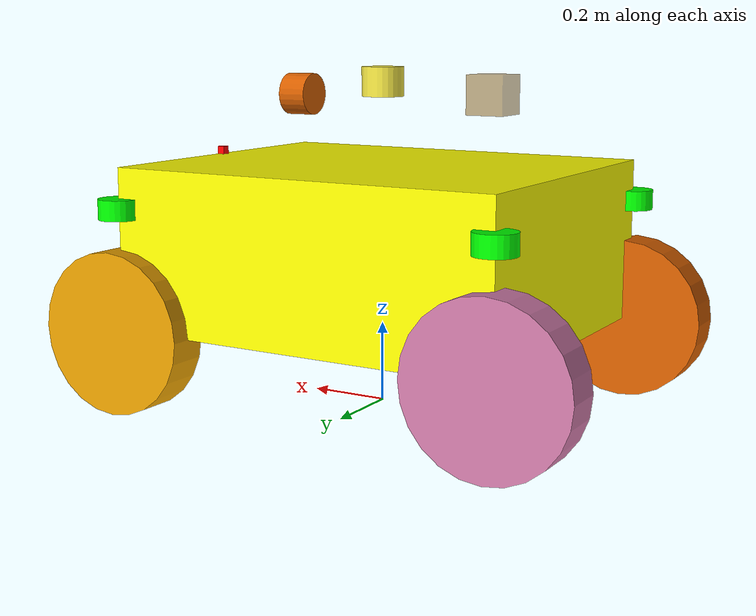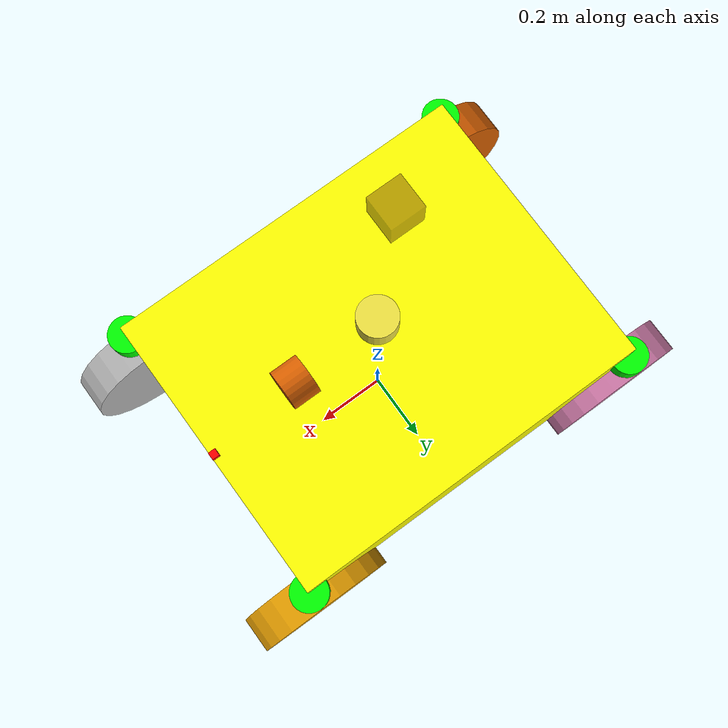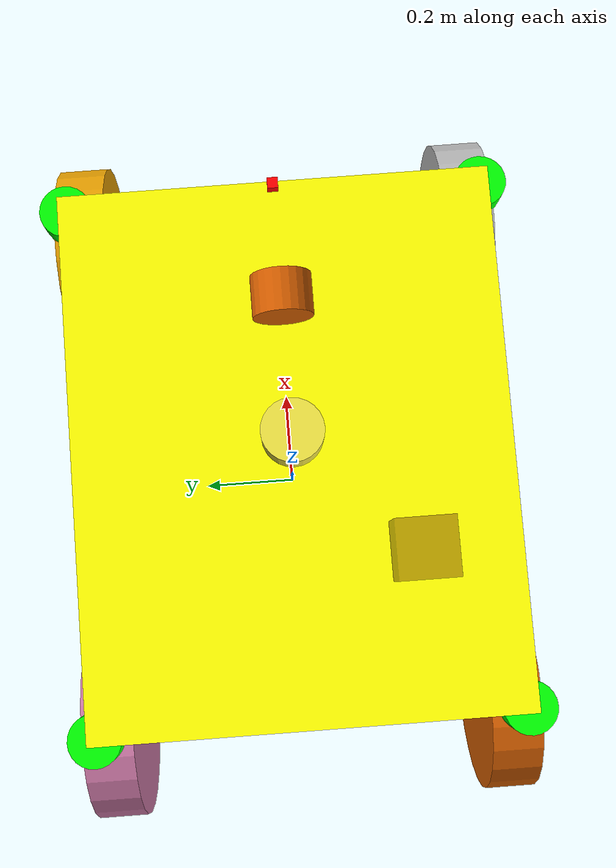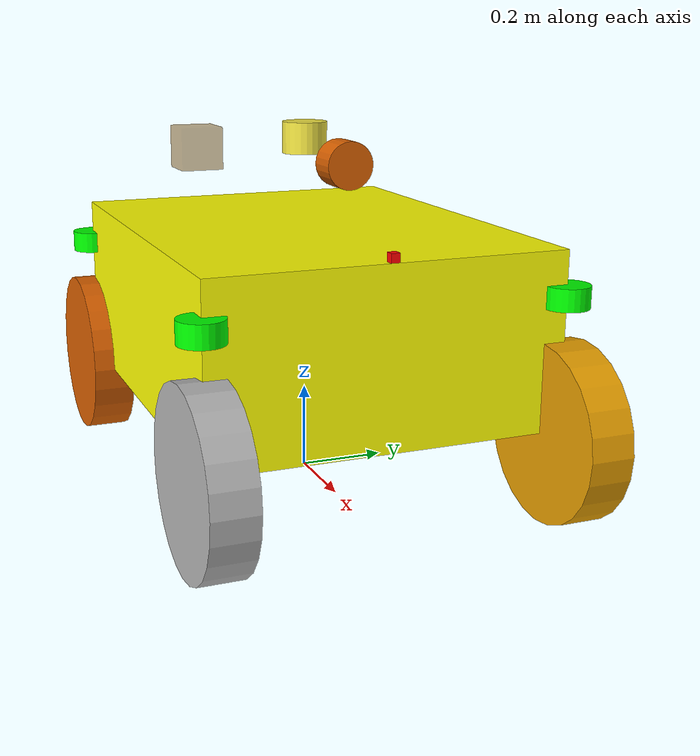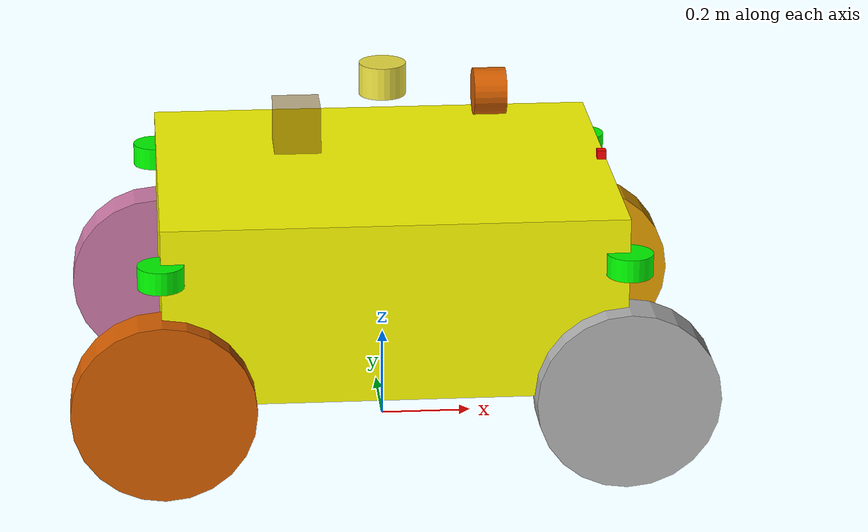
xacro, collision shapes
<?xml version="1.0" ?>
<robot name="airport_robot"
    xmlns:xacro="http://www.ros.org/wiki/xacro">
    <!-- *************************用于构建机场地图的双激光雷达机器人模型*************************** -->
    <xacro:property name="robot_id" value="0"/>
    <xacro:property name="robot_name" value="$(arg robot_name)"/>
    <xacro:property name="PI" value="3.1415926835897931"/>
    <xacro:property name="material_density" value="10.0"/>

    <!-- base -->
    <xacro:property name="base_length" value="1"/>
    <xacro:property name="base_width" value="0.8"/>
    <xacro:property name="base_height" value="0.4"/>
    <xacro:property name="base_collision_height" value="0.4"/>
    <xacro:property name="base_mass" value="${material_density*base_length*base_width*base_height}"/>
    <xacro:property name="base_mass_ixx" value="${(base_width*base_width+base_height*base_height)*base_mass/12.0}"/>
    <xacro:property name="base_mass_iyy" value="${(base_length*base_length+base_height*base_height)*base_mass/12.0}"/>
    <xacro:property name="base_mass_izz" value="${(base_width*base_width+base_width*base_width)*base_mass/12.0}"/>
    <!-- rear tyre -->
    <xacro:property name="rear_tyre_x" value="${base_length/2.0}"/>
    <xacro:property name="rear_tyre_y" value="${base_width/2.0}"/>
    <xacro:property name="rear_tyre_r" value="${base_collision_height/2.0}"/>
    <xacro:property name="rear_tyre_length" value="0.1"/>
    <xacro:property name="rear_tyre_mass" value="20"/>
    <xacro:property name="rear_tyre_mass_ixx" value="0.5"/>
    <xacro:property name="rear_tyre_mass_iyy" value="0.9"/>
    <xacro:property name="rear_tyre_mass_izz" value="0.5"/>
    <!-- front tyre -->
    <xacro:property name="front_tyre_x" value="${base_length/2.0}"/>
    <xacro:property name="front_tyre_y" value="${base_width/2.0}"/>
    <xacro:property name="front_tyre_r" value="${base_collision_height/2.0}"/>
    <xacro:property name="front_tyre_length" value="0.1"/>
    <xacro:property name="front_tyre_mass" value="20"/>
    <xacro:property name="front_tyre_mass_ixx" value="0.5"/>
    <xacro:property name="front_tyre_mass_iyy" value="0.9"/>
    <xacro:property name="front_tyre_mass_izz" value="0.5"/>
    <xacro:property name="front_commandtyre_mass_izz" value="0.5"/>
    <!-- steering -->
    <xacro:property name="str_angle" value="0.6"/>
    <xacro:property name="str_length" value="0.01"/>
    <xacro:property name="str_radius" value="0.1"/>
    <xacro:property name="str_mass" value="5"/>
    <xacro:property name="str_mass_ixx" value="0.012"/>
    <xacro:property name="str_mass_iyy" value="0.025"/>
    <xacro:property name="str_mass_izz" value="0.012"/>

    <!-- IMU -->
    <xacro:property name="IMU_x" value="0"/>
    <xacro:property name="IMU_y" value="0"/>
    <xacro:property name="IMU_z" value="1.25"/>

    <!-- LiDAR -->
    <xacro:property name="LiDAR_x" value="0"/>
    <xacro:property name="LiDAR_y" value="0"/>
    <xacro:property name="LiDAR_z" value="1.5"/>

    <!-- velodyne -->
    <xacro:property name="lasers_horizon" value="16"/>
    <xacro:property name="lasers_vertical" value="16"/>
    <xacro:property name="link_support_joint_x" value="0"/>
    <xacro:property name="link_support_joint_y" value="0"/>
    <xacro:property name="link_support_joint_z" value="0.08"/>

    <!-- To fix the problem -->
    <!-- The root link base_link has an inertia specified in the URDF, but KDL does not support a root link with an inertia.  As a workaround, you can add an extra dummy link to your URDF. -->
     <link name="odom">
    </link>
    <joint name="odom" type="fixed">
        <parent link="odom"/>
        <child link="base_footprint"/>
        <origin xyz="0 0 0" rpy="0 0 0"/>
    </joint>

    <link name="base_footprint">
    </link>
    <joint name="base_joint" type="fixed">
        <parent link="base_footprint"/>
        <child link="base_link"/>
        <origin xyz="0 0 0" rpy="0 0 0"/>
    </joint>

    <!--Car Body-->
    <link name="base_link">
        <inertial>
            <origin xyz="0 0 ${base_collision_height}" rpy="0 0 0"/>
            <mass value="${base_mass}"/>
            <inertia ixx="${base_mass_ixx}" ixy="0" ixz="0" iyy="${base_mass_iyy}" iyz="0" izz="${base_mass_izz}" />
        </inertial>
        <visual>
            <origin xyz="0 0 ${base_collision_height}" rpy="0 0 0" />
            <geometry>
                <box size="${base_length} ${base_width} ${base_height}" />
            </geometry>
            <material name="Yellow">
                <color rgba="1.0 1.0 0.0 1.0"/>
            </material>
        </visual>
        <collision>
            <origin xyz="0 0 ${base_collision_height}" rpy="0 0 0"/>
            <geometry>
                <box size="${base_length} ${base_width} ${base_height}"/>
            </geometry>
        </collision>
    </link>

    <!--定位激光雷达-->

    <xacro:arg name="gpu" default="true"/>
    <xacro:property name="gpu" value="$(arg gpu)" />
    <xacro:arg name="organize_cloud" default="false"/>
    <xacro:property name="organize_cloud" value="$(arg organize_cloud)" />
    <xacro:include filename="$(find velodyne_description)/urdf/VLP-16.urdf.xacro"/>
    <xacro:VLP-16 parent="base_link" name="velodyne" topic="points_raw" organize_cloud="${organize_cloud}" hz="10" samples="440" gpu="${gpu}" lasers="${lasers_horizon}">
        <origin xyz="0 0 0.76415" rpy="0 0 0" />
    </xacro:VLP-16>

    <xacro:arg name="gpu" default="true"/>
    <xacro:property name="gpu" value="$(arg gpu)" />
    <xacro:arg name="organize_cloud" default="false"/>
    <xacro:property name="organize_cloud" value="$(arg organize_cloud)" />
    <xacro:include filename="$(find velodyne_description)/urdf/VLP-16.urdf.xacro"/>
    <xacro:VLP-16 parent="base_link" name="velodyne1" topic="points_raw1" organize_cloud="${organize_cloud}" hz="10" samples="440" gpu="${gpu}" lasers="${lasers_vertical}">
        <origin xyz="0.2 0 0.76415" rpy="0 1.57 0" />

    </xacro:VLP-16>

    <!-- IMU sensor -->
    <joint name="imu_joint1" type="fixed">
        <parent link="base_link"/>
        <child link="imu_link1"/>
        <origin xyz="-0.2 -0.2 0.76415" rpy="0 0 0"/>
    </joint>
    <link name="imu_link1">
        <collision>
            <origin xyz="0 0 0" rpy="0 0 0"/>
            <geometry>
                <box size="0.1 0.1 0.1"/>
            </geometry>
        </collision>
        <visual>
            <origin xyz="0 0 0" rpy="0 0 0"/>
            <geometry>
                <box size="0.1 0.1 0.1"/>
            </geometry>
            <material name="yellow">
                <color rgba="0.5 0.3 0.0 0.5" />
            </material>
        </visual>
    </link>
    <gazebo reference="imu_link1">
        <gravity>true</gravity>
        <material>Gazebo/Yellow</material>
        <sensor name="imu_sensor1" type="imu">
            <always_on>true</always_on>
            <update_rate>200.0</update_rate>
            <visualize>true</visualize>
            <topic>__default_topic__</topic>
            <plugin filename="libgazebo_ros_imu_sensor.so" name="imu_plugin">
                <topicName>/$(arg robot_name)/imu</topicName>
                <frameName>imu_link1</frameName>
                <updateRateHZ>200.0</updateRateHZ>
                <gaussianNoise>0.0</gaussianNoise>
                <xyzOffset>0 0 0</xyzOffset>
                <rpyOffset>0 0 0</rpyOffset>
            </plugin>
            <pose>0 0 0 0 0 0</pose>
        </sensor>
    </gazebo>

    <gazebo>
        <plugin name="p3d_base_controller" filename="libgazebo_ros_p3d.so">
            <alwaysOn>true</alwaysOn>
            <updateRate>10.0</updateRate>
            <bodyName>base_link</bodyName>
            <topicName>/$(arg robot_name)/odom</topicName>
            <gaussianNoise>0</gaussianNoise>
            <frameName>world</frameName>
            <xyzOffsets>0 0 0</xyzOffsets>
            <rpyOffsets>0 0 0</rpyOffsets>
        </plugin>
    </gazebo>

    <!--Laser sensor-->
    <xacro:macro name="laser_block" params="index min_range *origin">
        <joint name="laser${index}_joint" type="fixed">
            <xacro:insert_block name="origin" />
            <parent link="base_link"/>
            <child link="laser${index}_link"/>
        </joint>
        <link name="laser${index}_link">
            <collision>
                <origin xyz="0 0 0" rpy="0 0 0"/>
                <geometry>
                    <cylinder length="0.05" radius="0.05"/>
                </geometry>
            </collision>
            <visual>
                <origin xyz="0 0 0" rpy="0 0 0"/>
                <geometry>
                    <cylinder length="0.05" radius="0.05"/>
                </geometry>
                <material name="Green">
                    <color rgba="0 1.0 0.0 1.0"/>
                </material>
            </visual>
        </link>
        <gazebo reference="laser${index}_link">
            <sensor type="ray" name="laser${index}_sensor">
                <pose>0 0 0 0 0 0</pose>
                <visualize>false</visualize>
                <update_rate>10</update_rate>
                <ray>
                    <scan>
                        <horizontal>
                            <samples>920</samples>
                            <resolution>0.391</resolution>
                            <min_angle>-3.1415926</min_angle>
                            <max_angle>3.1415926</max_angle>
                        </horizontal>

                    </scan>
                    <range>
                        <min>${min_range}</min>
                        <max>40.0</max>
                        <resolution>0.03</resolution>
                    </range>
                    <noise>
                        <type>gaussian</type>
                        <mean>0.0</mean>
                        <stddev>0.05</stddev>
                    </noise>
                </ray>
                <plugin name="gazebo_ros_laser${index}_controller" filename="libgazebo_ros_laser.so">
                    <topicName>/${robot_name}/scan_raw${index}</topicName>
                    <frameName>laser${index}_link</frameName>
                </plugin>
            </sensor>
        </gazebo>
    </xacro:macro>
    <xacro:laser_block index="_1" min_range="1.3">
        <origin xyz="${base_length/2} ${base_width/2} 0.5" rpy="0 0 0"/>
    </xacro:laser_block>
    <xacro:laser_block index="_2" min_range="1.3">
        <origin xyz="${base_length/2} ${-base_width/2} 0.5" rpy="0 0 0"/>
    </xacro:laser_block>
    <xacro:laser_block index="_3" min_range="1.3">
        <origin xyz="${-base_length/2} ${base_width/2} 0.5" rpy="0 0 0"/>
    </xacro:laser_block>
    <xacro:laser_block index="_4" min_range="1.3">
        <origin xyz="${-base_length/2} ${-base_width/2} 0.5" rpy="0 0 0"/>
    </xacro:laser_block>

    <!--Camera1 sensor-->
    <joint name="camera1_joint" type="fixed">
        <axis xyz="0 1 0" />
        <origin xyz="${base_length/2-0.01} 0 ${base_height/2+base_collision_height+0.01}" rpy="0 0 0"/>
        <parent link="base_link"/>
        <child link="camera1_link"/>
    </joint>
    <link name="camera1_link">
        <collision>
            <origin xyz="0 0 0" rpy="0 0 0"/>
            <geometry>
                <box size="0.02 0.02 0.02"/>
            </geometry>
        </collision>
        <visual>
            <origin xyz="0 0 0" rpy="0 0 0"/>
            <geometry>
                <box size="0.02 0.02 0.02"/>
            </geometry>

            <material name="red">
                <color rgba="1.0 0.0 0.0 1.0"/>
            </material>

        </visual>
    </link>
    <gazebo reference="camera1_link">
        <sensor type="camera" name="camera1">
            <update_rate>30.0</update_rate>
            <camera name="head">
                <horizontal_fov>1.74532925</horizontal_fov>
                <image>
                    <width>800</width>
                    <height>800</height>
                    <format>R8G8B8</format>
                </image>
                <clip>
                    <near>0.02</near>
                    <far>300</far>
                </clip>
                <noise>
                    <type>gaussian</type>
                    <!-- Noise is sampled independently per pixel on each frame.
               That pixel's noise value is added to each of its color
               channels, which at that point lie in the range [0,1]. -->
                    <mean>0.0</mean>
                    <stddev>0.007</stddev>
                </noise>
            </camera>
            <plugin name="camera_controller" filename="libgazebo_ros_camera.so">
                <alwaysOn>true</alwaysOn>
                <updateRate>0.0</updateRate>
                <cameraName>airport_robot/camera1</cameraName>
                <imageTopicName>image_raw</imageTopicName>
                <cameraInfoTopicName>camera_info</cameraInfoTopicName>
                <frameName>camera_link</frameName>
                <hackBaseline>0.07</hackBaseline>
                <distortionK1>0.0</distortionK1>
                <distortionK2>0.0</distortionK2>
                <distortionK3>0.0</distortionK3>
                <distortionT1>0.0</distortionT1>
                <distortionT2>0.0</distortionT2>
            </plugin>
        </sensor>
    </gazebo>

    <!--Camera2 sensor-->

    <!--Camera3 sensor-->

    <!--Rear Right Wheel-->
    <joint name="rear_right_wheel_joint" type="continuous">
        <parent link="base_link"/>
        <child link="rear_right_wheel_link"/>
        <origin xyz="${-rear_tyre_x} ${-rear_tyre_y} ${rear_tyre_r}" rpy="0 0 0"/>
        <axis xyz="0 1 0"/>
        <dynamics damping="0.1"/>
        <limit effort="1000000" velocity="10000" />
        <joint_properties damping="0.0" friction="0.0" />
    </joint>
    <link name="rear_right_wheel_link">
        <collision>
            <origin xyz="0 0 0" rpy="${PI/2} 0 0"/>
            <geometry>
                <cylinder length="${rear_tyre_length}" radius="${rear_tyre_r}"/>
            </geometry>
        </collision>
        <visual>
            <origin xyz="0 0 0" rpy="${PI/2} 0 0"/>
            <geometry>
                <cylinder length="${rear_tyre_length}" radius="${rear_tyre_r}"/>
            </geometry>
        </visual>
        <inertial>
            <origin xyz="0 0 0" rpy="0 0 0"/>
            <mass value="${rear_tyre_mass}"/>
            <inertia ixx="${rear_tyre_mass_ixx}" ixy="0.000000" ixz="0.000000" iyy="${rear_tyre_mass_iyy}" iyz="0.000000" izz="${rear_tyre_mass_izz}"/>
        </inertial>
    </link>

    <!--Rear Left Wheel-->
    <joint name="rear_left_wheel_joint" type="continuous">
        <parent link="base_link"/>
        <child link="rear_left_wheel_link"/>
        <origin xyz="${-rear_tyre_x} ${rear_tyre_y} ${rear_tyre_r}" rpy="0 0 0"/>
        <axis xyz="0 1 0"/>
        <dynamics damping="0.1"/>
        <limit effort="1000000" velocity="10000" />
        <joint_properties damping="0.0" friction="0.0" />
    </joint>
    <link name="rear_left_wheel_link">
        <collision>
            <origin xyz="0 0 0" rpy="${PI/2} 0 0"/>
            <geometry>
                <cylinder length="${rear_tyre_length}" radius="${rear_tyre_r}"/>
            </geometry>
        </collision>
        <visual>
            <origin xyz="0 0 0" rpy="${PI/2} 0 0"/>
            <geometry>
                <cylinder length="${rear_tyre_length}" radius="${rear_tyre_r}"/>
            </geometry>
        </visual>
        <inertial>
            <origin xyz="0 0 0" rpy="0 0 0"/>
            <mass value="${rear_tyre_mass}"/>
            <inertia ixx="${rear_tyre_mass_ixx}" ixy="0.000000" ixz="0.000000" iyy="${rear_tyre_mass_iyy}" iyz="0.000000" izz="${rear_tyre_mass_izz}"/>
        </inertial>
    </link>

    <!--Front Right Wheel-->
    <joint name="front_right_wheel_joint" type="continuous">
        <parent link="base_link"/>
        <child link="front_right_wheel_link"/>
        <origin xyz="${front_tyre_x} ${-front_tyre_y} ${front_tyre_r}" rpy="0 0 0"/>
        <axis xyz="0 1 0"/>
        <dynamics damping="0.1"/>
        <limit effort="1000000" velocity="10000" />
        <joint_properties damping="0.0" friction="0.0" />
    </joint>
    <link name="front_right_wheel_link">
        <collision>
            <origin xyz="0 0 0" rpy="${PI/2} 0 0"/>
            <geometry>
                <cylinder length="${front_tyre_length}" radius="${front_tyre_r}"/>
            </geometry>
        </collision>
        <visual>
            <origin xyz="0 0 0" rpy="${PI/2} 0 0"/>
            <geometry>
                <cylinder length="${front_tyre_length}" radius="${front_tyre_r}"/>
            </geometry>
        </visual>
        <inertial>
            <origin xyz="0 0 0" rpy="0 0 0"/>
            <mass value="${front_tyre_mass}"/>
            <inertia ixx="${front_tyre_mass_ixx}" ixy="0.000000" ixz="0.000000" iyy="${front_tyre_mass_iyy}" iyz="0.000000" izz="${front_tyre_mass_izz}"/>
        </inertial>
    </link>

    <!--Front Left Wheel-->
    <joint name="front_left_wheel_joint" type="continuous">
        <parent link="base_link"/>
        <child link="front_left_wheel_link"/>
        <origin xyz="${front_tyre_x} ${front_tyre_y} ${front_tyre_r}" rpy="0 0 0"/>
        <axis xyz="0 1 0"/>
        <dynamics damping="0.1"/>
        <limit effort="1000000" velocity="10000" />
        <joint_properties damping="0.0" friction="0.0" />

    </joint>
    <link name="front_left_wheel_link">
        <collision>
            <origin xyz="0 0 0" rpy="${PI/2} 0 0"/>
            <geometry>
                <cylinder length="${front_tyre_length}" radius="${front_tyre_r}"/>
            </geometry>
        </collision>
        <visual>
            <origin xyz="0 0 0" rpy="${PI/2} 0 0"/>
            <geometry>
                <cylinder length="${front_tyre_length}" radius="${front_tyre_r}"/>
            </geometry>
        </visual>
        <inertial>
            <origin xyz="0 0 0" rpy="0 0 0"/>
            <mass value="${front_tyre_mass}"/>
            <inertia ixx="${front_tyre_mass_ixx}" ixy="0.000000" ixz="0.000000" iyy="${front_tyre_mass_iyy}" iyz="0.000000" izz="${front_tyre_mass_izz}"/>
        </inertial>
    </link>

    <!-- motors and transmissions for the two rear wheels -->
    <transmission name="tran1">
        <type>transmission_interface/SimpleTransmission</type>
        <joint name="rear_right_wheel_joint">
            <hardwareInterface>hardware_interface/VelocityJointInterface</hardwareInterface>
        </joint>
        <actuator name="motor1">
            <hardwareInterface>hardware_interface/VelocityJointInterface</hardwareInterface>
            <mechanicalReduction>1</mechanicalReduction>
        </actuator>
    </transmission>
    <transmission name="tran2">
        <type>transmission_interface/SimpleTransmission</type>
        <joint name="rear_left_wheel_joint">
            <hardwareInterface>hardware_interface/VelocityJointInterface</hardwareInterface>
        </joint>
        <actuator name="motor2">
            <hardwareInterface>hardware_interface/VelocityJointInterface</hardwareInterface>
            <mechanicalReduction>1</mechanicalReduction>
        </actuator>
    </transmission>

    <!-- EPS and transmissions for the front steering -->
    <transmission name="tran3">
        <type>transmission_interface/SimpleTransmission</type>
        <joint name="front_right_wheel_joint">
            <hardwareInterface>hardware_interface/VelocityJointInterface</hardwareInterface>
        </joint>
        <actuator name="motor3">
            <hardwareInterface>hardware_interface/VelocityJointInterface</hardwareInterface>
            <mechanicalReduction>1</mechanicalReduction>
        </actuator>
    </transmission>
    <transmission name="tran4">
        <type>transmission_interface/SimpleTransmission</type>
        <joint name="front_left_wheel_joint">
            <hardwareInterface>hardware_interface/VelocityJointInterface</hardwareInterface>
        </joint>
        <actuator name="motor4">
            <hardwareInterface>hardware_interface/VelocityJointInterface</hardwareInterface>
            <mechanicalReduction>1</mechanicalReduction>
        </actuator>
    </transmission>

    <!-- Friction Parametres -->
    <gazebo reference="rear_right_wheel_link">
        <mu1>10000000</mu1>
        <mu2>10000000</mu2>
        <kp>10000000</kp>
        <kd>1</kd>
    </gazebo>
    <gazebo reference="rear_left_wheel_link">
        <mu1>10000000</mu1>
        <mu2>10000000</mu2>
        <kp>10000000</kp>
        <kd>1</kd>
    </gazebo>
    <gazebo reference="front_right_wheel_link">
        <mu1>10000000</mu1>
        <mu2>10000000</mu2>
        <kp>10000000</kp>
        <kd>1</kd>
    </gazebo>
    <gazebo reference="front_left_wheel_link">
        <mu1>10000000</mu1>
        <mu2>10000000</mu2>
        <kp>10000000</kp>
        <kd>1</kd>
    </gazebo>

    <!-- Gazebo Plugins -->
    <gazebo>
        <plugin name="gazebo_ros_control" filename="libgazebo_ros_control.so">
            <robotNamespace>/${robot_name}/airport_robot</robotNamespace>
            <robotParam>robot_description</robotParam>
            <robotSimType>gazebo_ros_control/DefaultRobotHWSim</robotSimType>
        </plugin>
    </gazebo>
</robot>

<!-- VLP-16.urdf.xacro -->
<robot xmlns:xacro="http://www.ros.org/wiki/xacro" name="VLP-16">
  <xacro:property name="M_PI" value="3.1415926535897931" />
  <xacro:macro name="VLP-16" params="*origin is_sim:=true parent:=base_link name:=velodyne tf_prefix:='' topic:=/velodyne_points organize_cloud:=false hz:=10 lasers:=16 samples:=1875 collision_range:=0.3 min_range:=0.0 max_range:=100.0 noise:=0.008 min_angle:=-${M_PI} max_angle:=${M_PI} gpu:=false">

    <joint name="${name}_base_mount_joint" type="fixed">
      <xacro:insert_block name="origin" />
      <parent link="${parent}"/>
      <child link="${name}_base_link"/>
    </joint>

    <link name="${name}_base_link">
      <inertial>
        <mass value="0.83"/>
        <origin xyz="0 0 0.03585"/>
        <inertia ixx="${(0.83 * (3.0*0.0516*0.0516 + 0.0717*0.0717)) / 12.0}" ixy="0" ixz="0"
          iyy="${(0.83 * (3.0*0.0516*0.0516 + 0.0717*0.0717)) / 12.0}" iyz="0"
          izz="${0.5 * 0.83 * (0.0516*0.0516)}"/>
      </inertial>
      <visual>
        <geometry>
          <mesh filename="package://velodyne_description/meshes/VLP16_base_1.dae" />
        </geometry>
      </visual>
      <visual>
        <geometry>
          <mesh filename="package://velodyne_description/meshes/VLP16_base_2.dae" />
        </geometry>
      </visual>
      <collision>
        <origin rpy="0 0 0" xyz="0 0 0.03585"/>
        <geometry>
          <cylinder radius="0.0516" length="0.0717"/>
        </geometry>
      </collision>
    </link>

    <joint name="${name}_base_scan_joint" type="fixed" >
      <origin xyz="0 0 0.0377" rpy="0 0 0" />
      <parent link="${name}_base_link" />
      <child link="${name}"/>
    </joint>

    <link name="${name}">
      <inertial>
        <mass value="0.01"/>
        <origin xyz="0 0 0"/>
        <inertia ixx="1e-7" ixy="0" ixz="0" iyy="1e-7" iyz="0" izz="1e-7"/>
      </inertial>
      <visual>
        <origin xyz="0 0 -0.0377" />
        <geometry>
          <mesh filename="package://velodyne_description/meshes/VLP16_scan.dae" />
        </geometry>
      </visual>
      <collision>
        <geometry>
          <sphere radius="0"/>
        </geometry>
      </collision>
    </link>

    <!-- Gazebo requires the velodyne_gazebo_plugins package -->
    <xacro:if value="${is_sim}">
        <gazebo reference="${name}">
            <xacro:if value="${gpu}">
                <sensor type="gpu_ray" name="${name}-VLP16">
                <pose>0 0 0 0 0 0</pose>
                <visualize>false</visualize>
                <update_rate>${hz}</update_rate>
                <ray>
                    <scan>
                    <horizontal>
                        <samples>${samples}</samples>
                        <resolution>1</resolution>
                        <min_angle>${min_angle}</min_angle>
                        <max_angle>${max_angle}</max_angle>
                    </horizontal>
                    <vertical>
                        <samples>${lasers}</samples>
                        <resolution>1</resolution>
                        <min_angle>-${15.0*M_PI/180.0}</min_angle>
                        <max_angle> ${15.0*M_PI/180.0}</max_angle>
                    </vertical>
                    </scan>
                    <range>
                    <min>${collision_range}</min>
                    <max>${max_range+1}</max>
                    <resolution>0.001</resolution>
                    </range>
                    <noise>
                    <type>gaussian</type>
                    <mean>0.0</mean>
                    <stddev>0.0</stddev>
                    </noise>
                </ray>
                <plugin name="gazebo_ros_laser_controller" filename="libgazebo_ros_velodyne_laser.so">
                    <ros>
                    <namespace>/${name}</namespace>
                    <remapping>~/out:=${topic}</remapping>
                    </ros>
                    <tf_prefix>${tf_prefix}</tf_prefix>
                    <frame_name>${name}</frame_name>
                    <organize_cloud>${organize_cloud}</organize_cloud>
                    <min_range>${min_range}</min_range>
                    <max_range>${max_range}</max_range>
                    <gaussian_noise>${noise}</gaussian_noise>
                </plugin>
                </sensor>
            </xacro:if>
            <xacro:unless value="${gpu}">
                <sensor type="ray" name="${name}-VLP16">
                <pose>0 0 0 0 0 0</pose>
                <visualize>false</visualize>
                <update_rate>${hz}</update_rate>
                <ray>
                    <scan>
                    <horizontal>
                        <samples>${samples}</samples>
                        <resolution>1</resolution>
                        <min_angle>${min_angle}</min_angle>
                        <max_angle>${max_angle}</max_angle>
                    </horizontal>
                    <vertical>
                        <samples>${lasers}</samples>
                        <resolution>1</resolution>
                        <min_angle>-${15.0*M_PI/180.0}</min_angle>
                        <max_angle> ${15.0*M_PI/180.0}</max_angle>
                    </vertical>
                    </scan>
                    <range>
                    <min>${collision_range}</min>
                    <max>${max_range+1}</max>
                    <resolution>0.001</resolution>
                    </range>
                    <noise>
                    <type>gaussian</type>
                    <mean>0.0</mean>
                    <stddev>0.0</stddev>
                    </noise>
                </ray>
                <plugin name="gazebo_ros_laser_controller" filename="libgazebo_ros_velodyne_laser.so">
                    <ros>
                    <namespace>/${name}</namespace>
                    <remapping>~/out:=${topic}</remapping>
                    </ros>
                    <tf_prefix>${tf_prefix}</tf_prefix>
                    <frame_name>${name}</frame_name>
                    <organize_cloud>${organize_cloud}</organize_cloud>
                    <min_range>${min_range}</min_range>
                    <max_range>${max_range}</max_range>
                    <gaussian_noise>${noise}</gaussian_noise>
                </plugin>
                </sensor>
            </xacro:unless>
        </gazebo>
    </xacro:if>

  </xacro:macro>
</robot>
